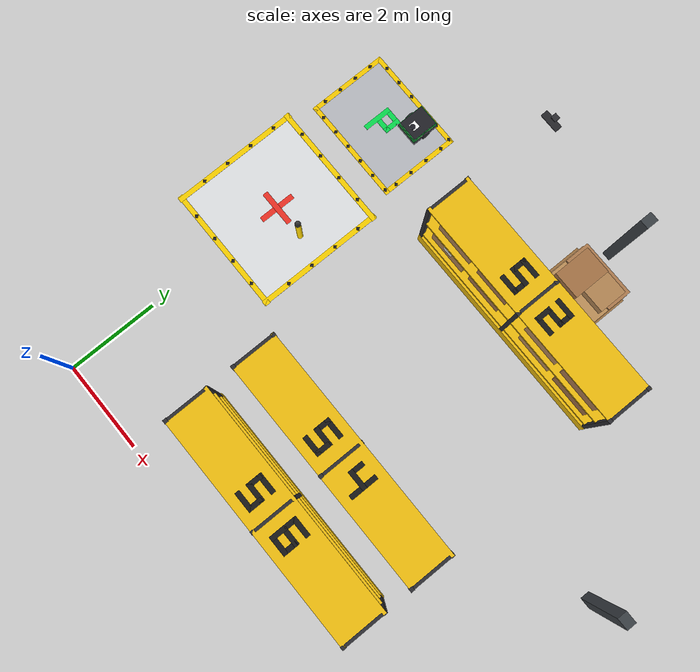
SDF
<sdf version="1.9">
 <world name="warehouse">
  <model name="pillar_n_r">
   <static>true</static>
   <pose>5.0 9.85 1.25 0 0 0</pose>
   <link name="link">
    <visual name="vis">
     <geometry><box><size>0.20 0.25 2.5</size></box></geometry>
     <material><ambient>0.18 0.20 0.22 1</ambient><diffuse>0.24 0.26 0.28 1</diffuse></material>
    </visual>
   </link>
  </model>
  <model name="pillar_e_n">
   <static>true</static>
   <pose>9.85 5.00 1.25 0 0 0</pose>
   <link name="link">
    <visual name="vis">
     <geometry><box><size>0.25 0.20 2.5</size></box></geometry>
     <material><ambient>0.18 0.20 0.22 1</ambient><diffuse>0.24 0.26 0.28 1</diffuse></material>
    </visual>
   </link>
  </model>
  <model name="fixture_wall_n2">
   <static>true</static>
   <pose>2.5 9.92 2.35 0 0 0</pose>
   <link name="link">
    <visual name="bracket">
     <pose>0 -0.06 0 0 0 0</pose>
     <geometry><box><size>0.12 0.12 0.08</size></box></geometry>
     <material><ambient>0.12 0.12 0.14 1</ambient><diffuse>0.18 0.18 0.20 1</diffuse></material>
    </visual>
    <visual name="lamp">
     <pose>0 -0.14 -0.02 0.3 0 0</pose>
     <geometry><box><size>0.40 0.14 0.06</size></box></geometry>
     <material><ambient>0.12 0.12 0.14 1</ambient><diffuse>0.18 0.18 0.20 1</diffuse></material>
    </visual>
    <visual name="led_strip">
     <pose>0 -0.14 -0.05 0.3 0 0</pose>
     <geometry><box><size>0.36 0.10 0.01</size></box></geometry>
     <material>
      <ambient>0.9 0.9 0.85 1</ambient>
      <diffuse>1.0 1.0 0.9 1</diffuse>
      <emissive>0.95 0.95 0.85 1</emissive>
     </material>
    </visual>
   </link>
  </model>
  <include><uri>model://shelf</uri><name>shelf_rack_NE1</name><pose>4.8 7.5 0 0 0 0</pose></include>
  <include><uri>model://shelf</uri><name>shelf_rack_NE2</name><pose>4.8 3.0 0 0 0 0</pose></include>
  <include><uri>model://shelf</uri><name>shelf_rack_SE2</name><pose>4.8 1.5 0 0 0 0</pose></include>
  <include><uri>model://pallet_stack</uri><name>pallet_tower_2</name><pose>5.2 8.75 0 0 0 0</pose></include>
  <model name="intersection_I1_marker">
   <static>true</static>
   <pose>0 5.2 0.005 0 0 0</pose>
   <link name="link">
    <visual name="marker_zone">
     <geometry><box><size>2.7 2.7 0.005</size></box></geometry>
     <material><ambient>0.82 0.83 0.84 1.0</ambient><diffuse>0.90 0.91 0.92 1.0</diffuse></material>
    </visual>
    <visual name="frame_n">
     <pose>0 1.38 0.006 0 0 0</pose>
     <geometry><box><size>2.9 0.11 0.006</size></box></geometry>
     <material><ambient>0.95 0.78 0.0 1</ambient><diffuse>1.0 0.84 0.0 1</diffuse></material>
    </visual>
    <visual name="frame_s">
     <pose>0 -1.38 0.006 0 0 0</pose>
     <geometry><box><size>2.9 0.11 0.006</size></box></geometry>
     <material><ambient>0.95 0.78 0.0 1</ambient><diffuse>1.0 0.84 0.0 1</diffuse></material>
    </visual>
    <visual name="frame_e">
     <pose>1.38 0 0.006 0 0 0</pose>
     <geometry><box><size>0.11 2.9 0.006</size></box></geometry>
     <material><ambient>0.95 0.78 0.0 1</ambient><diffuse>1.0 0.84 0.0 1</diffuse></material>
    </visual>
    <visual name="frame_w">
     <pose>-1.38 0 0.006 0 0 0</pose>
     <geometry><box><size>0.11 2.9 0.006</size></box></geometry>
     <material><ambient>0.95 0.78 0.0 1</ambient><diffuse>1.0 0.84 0.0 1</diffuse></material>
    </visual>
    <visual name="hz_n1">
     <pose>-0.9 1.38 0.007 0 0 0.7854</pose>
     <geometry><box><size>0.065 0.065 0.006</size></box></geometry>
     <material><ambient>0.08 0.08 0.08 1</ambient><diffuse>0.12 0.12 0.12 1</diffuse></material>
    </visual>
    <visual name="hz_n2">
     <pose>-0.3 1.38 0.007 0 0 0.7854</pose>
     <geometry><box><size>0.065 0.065 0.006</size></box></geometry>
     <material><ambient>0.08 0.08 0.08 1</ambient><diffuse>0.12 0.12 0.12 1</diffuse></material>
    </visual>
    <visual name="hz_n3">
     <pose>0.3 1.38 0.007 0 0 0.7854</pose>
     <geometry><box><size>0.065 0.065 0.006</size></box></geometry>
     <material><ambient>0.08 0.08 0.08 1</ambient><diffuse>0.12 0.12 0.12 1</diffuse></material>
    </visual>
    <visual name="hz_n4">
     <pose>0.9 1.38 0.007 0 0 0.7854</pose>
     <geometry><box><size>0.065 0.065 0.006</size></box></geometry>
     <material><ambient>0.08 0.08 0.08 1</ambient><diffuse>0.12 0.12 0.12 1</diffuse></material>
    </visual>
    <visual name="hz_s1">
     <pose>-0.9 -1.38 0.007 0 0 0.7854</pose>
     <geometry><box><size>0.065 0.065 0.006</size></box></geometry>
     <material><ambient>0.08 0.08 0.08 1</ambient><diffuse>0.12 0.12 0.12 1</diffuse></material>
    </visual>
    <visual name="hz_s2">
     <pose>-0.3 -1.38 0.007 0 0 0.7854</pose>
     <geometry><box><size>0.065 0.065 0.006</size></box></geometry>
     <material><ambient>0.08 0.08 0.08 1</ambient><diffuse>0.12 0.12 0.12 1</diffuse></material>
    </visual>
    <visual name="hz_s3">
     <pose>0.3 -1.38 0.007 0 0 0.7854</pose>
     <geometry><box><size>0.065 0.065 0.006</size></box></geometry>
     <material><ambient>0.08 0.08 0.08 1</ambient><diffuse>0.12 0.12 0.12 1</diffuse></material>
    </visual>
    <visual name="hz_s4">
     <pose>0.9 -1.38 0.007 0 0 0.7854</pose>
     <geometry><box><size>0.065 0.065 0.006</size></box></geometry>
     <material><ambient>0.08 0.08 0.08 1</ambient><diffuse>0.12 0.12 0.12 1</diffuse></material>
    </visual>
    <visual name="hz_e1">
     <pose>1.38 -0.8 0.007 0 0 0.7854</pose>
     <geometry><box><size>0.065 0.065 0.006</size></box></geometry>
     <material><ambient>0.08 0.08 0.08 1</ambient><diffuse>0.12 0.12 0.12 1</diffuse></material>
    </visual>
    <visual name="hz_e2">
     <pose>1.38 -0.2 0.007 0 0 0.7854</pose>
     <geometry><box><size>0.065 0.065 0.006</size></box></geometry>
     <material><ambient>0.08 0.08 0.08 1</ambient><diffuse>0.12 0.12 0.12 1</diffuse></material>
    </visual>
    <visual name="hz_e3">
     <pose>1.38 0.4 0.007 0 0 0.7854</pose>
     <geometry><box><size>0.065 0.065 0.006</size></box></geometry>
     <material><ambient>0.08 0.08 0.08 1</ambient><diffuse>0.12 0.12 0.12 1</diffuse></material>
    </visual>
    <visual name="hz_e4">
     <pose>1.38 1.0 0.007 0 0 0.7854</pose>
     <geometry><box><size>0.065 0.065 0.006</size></box></geometry>
     <material><ambient>0.08 0.08 0.08 1</ambient><diffuse>0.12 0.12 0.12 1</diffuse></material>
    </visual>
    <visual name="hz_w1">
     <pose>-1.38 -0.8 0.007 0 0 0.7854</pose>
     <geometry><box><size>0.065 0.065 0.006</size></box></geometry>
     <material><ambient>0.08 0.08 0.08 1</ambient><diffuse>0.12 0.12 0.12 1</diffuse></material>
    </visual>
    <visual name="hz_w2">
     <pose>-1.38 -0.2 0.007 0 0 0.7854</pose>
     <geometry><box><size>0.065 0.065 0.006</size></box></geometry>
     <material><ambient>0.08 0.08 0.08 1</ambient><diffuse>0.12 0.12 0.12 1</diffuse></material>
    </visual>
    <visual name="hz_w3">
     <pose>-1.38 0.4 0.007 0 0 0.7854</pose>
     <geometry><box><size>0.065 0.065 0.006</size></box></geometry>
     <material><ambient>0.08 0.08 0.08 1</ambient><diffuse>0.12 0.12 0.12 1</diffuse></material>
    </visual>
    <visual name="hz_w4">
     <pose>-1.38 1.0 0.007 0 0 0.7854</pose>
     <geometry><box><size>0.065 0.065 0.006</size></box></geometry>
     <material><ambient>0.08 0.08 0.08 1</ambient><diffuse>0.12 0.12 0.12 1</diffuse></material>
    </visual>
    <visual name="i1_cross_h">
     <pose>0 0 0.005 0 0 0</pose>
     <geometry><box><size>0.80 0.12 0.0015</size></box></geometry>
     <material><ambient>0.85 0.15 0.10 1</ambient><diffuse>0.95 0.2 0.15 1</diffuse></material>
    </visual>
    <visual name="i1_cross_v">
     <pose>0 0 0.005 0 0 0</pose>
     <geometry><box><size>0.12 0.80 0.0015</size></box></geometry>
     <material><ambient>0.85 0.15 0.10 1</ambient><diffuse>0.95 0.2 0.15 1</diffuse></material>
    </visual>
   </link>
  </model>
  <model name="bollard_r1">
   <static>true</static>
   <pose>0.75 5.2 0.45 0 0 0</pose>
   <link name="link">
    <collision name="col">
     <geometry><cylinder><radius>0.06</radius><length>0.9</length></cylinder></geometry>
    </collision>
    <visual name="vis">
     <geometry><cylinder><radius>0.06</radius><length>0.9</length></cylinder></geometry>
     <material><ambient>0.95 0.78 0.0 1</ambient><diffuse>1.0 0.84 0.0 1</diffuse></material>
    </visual>
    <visual name="cap">
     <pose>0 0 0.46 0 0 0</pose>
     <geometry><sphere><radius>0.065</radius></sphere></geometry>
     <material><ambient>0.15 0.15 0.15 1</ambient><diffuse>0.20 0.20 0.20 1</diffuse></material>
    </visual>
   </link>
  </model>
  <model name="sign_P1">
   <static>true</static>
   <pose>0.0 8.0 0.006 0 0 0</pose>
   <link name="link">
    <visual name="p1_sv">
     <pose>-0.18 0 0 0 0 0</pose>
     <geometry><box><size>0.11 0.64 0.0015</size></box></geometry>
     <material><ambient>0.02 0.70 0.25 1</ambient><diffuse>0.04 0.88 0.32 1</diffuse></material>
    </visual>
    <visual name="p1_th">
     <pose>0.02 0.265 0 0 0 0</pose>
     <geometry><box><size>0.31 0.11 0.0015</size></box></geometry>
     <material><ambient>0.02 0.70 0.25 1</ambient><diffuse>0.04 0.88 0.32 1</diffuse></material>
    </visual>
    <visual name="p1_mh">
     <pose>0.02 0.00 0 0 0 0</pose>
     <geometry><box><size>0.31 0.11 0.0015</size></box></geometry>
     <material><ambient>0.02 0.70 0.25 1</ambient><diffuse>0.04 0.88 0.32 1</diffuse></material>
    </visual>
    <visual name="p1_rv">
     <pose>0.13 0.132 0 0 0 0</pose>
     <geometry><box><size>0.11 0.375 0.0015</size></box></geometry>
     <material><ambient>0.02 0.70 0.25 1</ambient><diffuse>0.04 0.88 0.32 1</diffuse></material>
    </visual>
   </link>
  </model>
  <model name="sign_S2">
   <static>true</static>
   <pose>4.8 7.5 2.201 0 0 0</pose>
   <link name="link">
    <visual name="s2_s_top">
     <pose>-0.50 0.24 0 0 0 0</pose>
     <geometry><box><size>0.42 0.10 0.0015</size></box></geometry>
     <material><ambient>0.06 0.06 0.06 1</ambient><diffuse>0.10 0.10 0.10 1</diffuse></material>
    </visual>
    <visual name="s2_s_tlv">
     <pose>-0.66 0.12 0 0 0 0</pose>
     <geometry><box><size>0.10 0.28 0.0015</size></box></geometry>
     <material><ambient>0.06 0.06 0.06 1</ambient><diffuse>0.10 0.10 0.10 1</diffuse></material>
    </visual>
    <visual name="s2_s_mid">
     <pose>-0.50 0 0 0 0 0</pose>
     <geometry><box><size>0.42 0.10 0.0015</size></box></geometry>
     <material><ambient>0.06 0.06 0.06 1</ambient><diffuse>0.10 0.10 0.10 1</diffuse></material>
    </visual>
    <visual name="s2_s_brv">
     <pose>-0.34 -0.12 0 0 0 0</pose>
     <geometry><box><size>0.10 0.28 0.0015</size></box></geometry>
     <material><ambient>0.06 0.06 0.06 1</ambient><diffuse>0.10 0.10 0.10 1</diffuse></material>
    </visual>
    <visual name="s2_s_bot">
     <pose>-0.50 -0.24 0 0 0 0</pose>
     <geometry><box><size>0.42 0.10 0.0015</size></box></geometry>
     <material><ambient>0.06 0.06 0.06 1</ambient><diffuse>0.10 0.10 0.10 1</diffuse></material>
    </visual>
    <visual name="s2_2_th">
     <pose>0.45 0.24 0 0 0 0</pose>
     <geometry><box><size>0.42 0.10 0.0015</size></box></geometry>
     <material><ambient>0.06 0.06 0.06 1</ambient><diffuse>0.10 0.10 0.10 1</diffuse></material>
    </visual>
    <visual name="s2_2_trv">
     <pose>0.61 0.12 0 0 0 0</pose>
     <geometry><box><size>0.10 0.28 0.0015</size></box></geometry>
     <material><ambient>0.06 0.06 0.06 1</ambient><diffuse>0.10 0.10 0.10 1</diffuse></material>
    </visual>
    <visual name="s2_2_mh">
     <pose>0.45 0 0 0 0 0</pose>
     <geometry><box><size>0.42 0.10 0.0015</size></box></geometry>
     <material><ambient>0.06 0.06 0.06 1</ambient><diffuse>0.10 0.10 0.10 1</diffuse></material>
    </visual>
    <visual name="s2_2_blv">
     <pose>0.29 -0.12 0 0 0 0</pose>
     <geometry><box><size>0.10 0.28 0.0015</size></box></geometry>
     <material><ambient>0.06 0.06 0.06 1</ambient><diffuse>0.10 0.10 0.10 1</diffuse></material>
    </visual>
    <visual name="s2_2_bh">
     <pose>0.45 -0.24 0 0 0 0</pose>
     <geometry><box><size>0.42 0.10 0.0015</size></box></geometry>
     <material><ambient>0.06 0.06 0.06 1</ambient><diffuse>0.10 0.10 0.10 1</diffuse></material>
    </visual>
   </link>
  </model>
  <model name="sign_S4">
   <static>true</static>
   <pose>4.8 3.0 2.201 0 0 0</pose>
   <link name="link">
    <visual name="s4_s_top">
     <pose>-0.50 0.24 0 0 0 0</pose>
     <geometry><box><size>0.42 0.10 0.0015</size></box></geometry>
     <material><ambient>0.06 0.06 0.06 1</ambient><diffuse>0.10 0.10 0.10 1</diffuse></material>
    </visual>
    <visual name="s4_s_tlv">
     <pose>-0.66 0.12 0 0 0 0</pose>
     <geometry><box><size>0.10 0.28 0.0015</size></box></geometry>
     <material><ambient>0.06 0.06 0.06 1</ambient><diffuse>0.10 0.10 0.10 1</diffuse></material>
    </visual>
    <visual name="s4_s_mid">
     <pose>-0.50 0 0 0 0 0</pose>
     <geometry><box><size>0.42 0.10 0.0015</size></box></geometry>
     <material><ambient>0.06 0.06 0.06 1</ambient><diffuse>0.10 0.10 0.10 1</diffuse></material>
    </visual>
    <visual name="s4_s_brv">
     <pose>-0.34 -0.12 0 0 0 0</pose>
     <geometry><box><size>0.10 0.28 0.0015</size></box></geometry>
     <material><ambient>0.06 0.06 0.06 1</ambient><diffuse>0.10 0.10 0.10 1</diffuse></material>
    </visual>
    <visual name="s4_s_bot">
     <pose>-0.50 -0.24 0 0 0 0</pose>
     <geometry><box><size>0.42 0.10 0.0015</size></box></geometry>
     <material><ambient>0.06 0.06 0.06 1</ambient><diffuse>0.10 0.10 0.10 1</diffuse></material>
    </visual>
    <visual name="s4_4_tlv">
     <pose>0.29 0.12 0 0 0 0</pose>
     <geometry><box><size>0.10 0.28 0.0015</size></box></geometry>
     <material><ambient>0.06 0.06 0.06 1</ambient><diffuse>0.10 0.10 0.10 1</diffuse></material>
    </visual>
    <visual name="s4_4_mh">
     <pose>0.45 0 0 0 0 0</pose>
     <geometry><box><size>0.42 0.10 0.0015</size></box></geometry>
     <material><ambient>0.06 0.06 0.06 1</ambient><diffuse>0.10 0.10 0.10 1</diffuse></material>
    </visual>
    <visual name="s4_4_rfv">
     <pose>0.61 0 0 0 0 0</pose>
     <geometry><box><size>0.10 0.58 0.0015</size></box></geometry>
     <material><ambient>0.06 0.06 0.06 1</ambient><diffuse>0.10 0.10 0.10 1</diffuse></material>
    </visual>
   </link>
  </model>
  <model name="sign_S6">
   <static>true</static>
   <pose>4.8 1.5 2.201 0 0 0</pose>
   <link name="link">
    <visual name="s6_s_top">
     <pose>-0.50 0.24 0 0 0 0</pose>
     <geometry><box><size>0.42 0.10 0.0015</size></box></geometry>
     <material><ambient>0.06 0.06 0.06 1</ambient><diffuse>0.10 0.10 0.10 1</diffuse></material>
    </visual>
    <visual name="s6_s_tlv">
     <pose>-0.66 0.12 0 0 0 0</pose>
     <geometry><box><size>0.10 0.28 0.0015</size></box></geometry>
     <material><ambient>0.06 0.06 0.06 1</ambient><diffuse>0.10 0.10 0.10 1</diffuse></material>
    </visual>
    <visual name="s6_s_mid">
     <pose>-0.50 0 0 0 0 0</pose>
     <geometry><box><size>0.42 0.10 0.0015</size></box></geometry>
     <material><ambient>0.06 0.06 0.06 1</ambient><diffuse>0.10 0.10 0.10 1</diffuse></material>
    </visual>
    <visual name="s6_s_brv">
     <pose>-0.34 -0.12 0 0 0 0</pose>
     <geometry><box><size>0.10 0.28 0.0015</size></box></geometry>
     <material><ambient>0.06 0.06 0.06 1</ambient><diffuse>0.10 0.10 0.10 1</diffuse></material>
    </visual>
    <visual name="s6_s_bot">
     <pose>-0.50 -0.24 0 0 0 0</pose>
     <geometry><box><size>0.42 0.10 0.0015</size></box></geometry>
     <material><ambient>0.06 0.06 0.06 1</ambient><diffuse>0.10 0.10 0.10 1</diffuse></material>
    </visual>
    <visual name="s6_6_th">
     <pose>0.45 0.24 0 0 0 0</pose>
     <geometry><box><size>0.42 0.10 0.0015</size></box></geometry>
     <material><ambient>0.06 0.06 0.06 1</ambient><diffuse>0.10 0.10 0.10 1</diffuse></material>
    </visual>
    <visual name="s6_6_lfv">
     <pose>0.29 0 0 0 0 0</pose>
     <geometry><box><size>0.10 0.58 0.0015</size></box></geometry>
     <material><ambient>0.06 0.06 0.06 1</ambient><diffuse>0.10 0.10 0.10 1</diffuse></material>
    </visual>
    <visual name="s6_6_mh">
     <pose>0.45 0 0 0 0 0</pose>
     <geometry><box><size>0.42 0.10 0.0015</size></box></geometry>
     <material><ambient>0.06 0.06 0.06 1</ambient><diffuse>0.10 0.10 0.10 1</diffuse></material>
    </visual>
    <visual name="s6_6_brv">
     <pose>0.61 -0.12 0 0 0 0</pose>
     <geometry><box><size>0.10 0.28 0.0015</size></box></geometry>
     <material><ambient>0.06 0.06 0.06 1</ambient><diffuse>0.10 0.10 0.10 1</diffuse></material>
    </visual>
    <visual name="s6_6_bh">
     <pose>0.45 -0.24 0 0 0 0</pose>
     <geometry><box><size>0.42 0.10 0.0015</size></box></geometry>
     <material><ambient>0.06 0.06 0.06 1</ambient><diffuse>0.10 0.10 0.10 1</diffuse></material>
    </visual>
   </link>
  </model>
  <include><uri>model://pickup_station</uri><name>pickup_P1</name><pose>0 8.0 0 0 0 0</pose></include>
  <include><uri>model://amr_green</uri><name>amr_green</name><pose>0.5 8.5 0.05 0 0 -1.570796</pose></include>
 </world>
</sdf>
